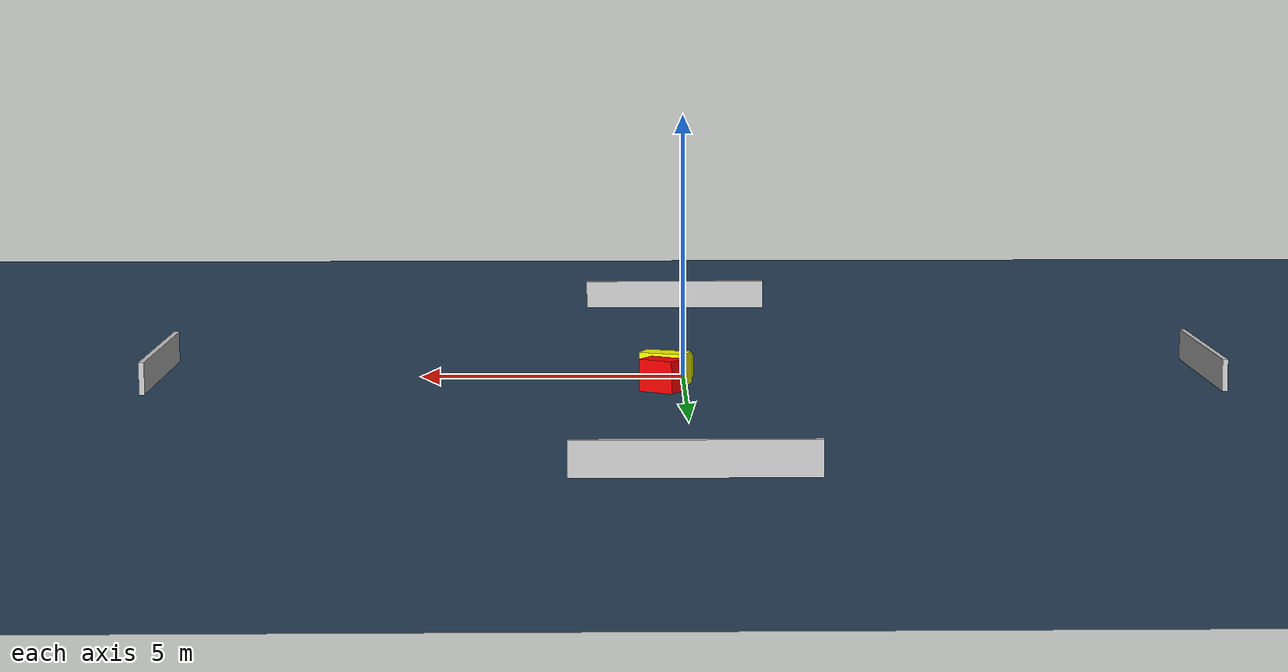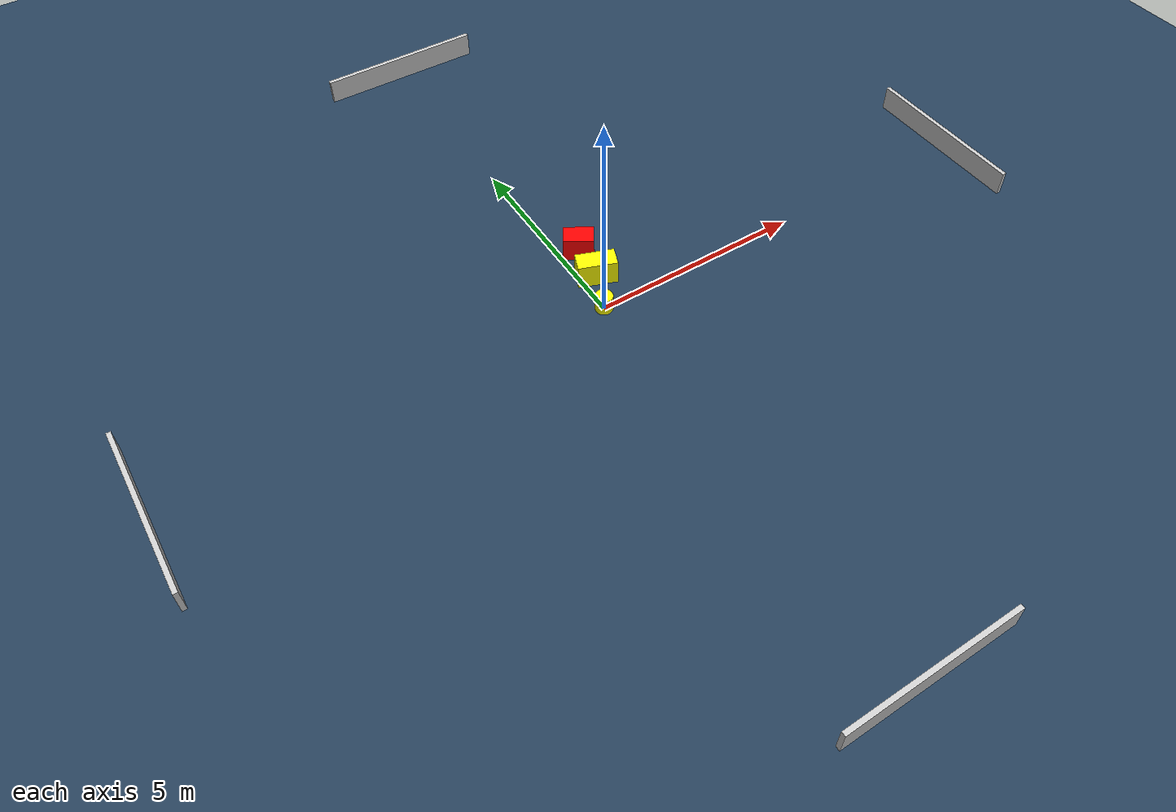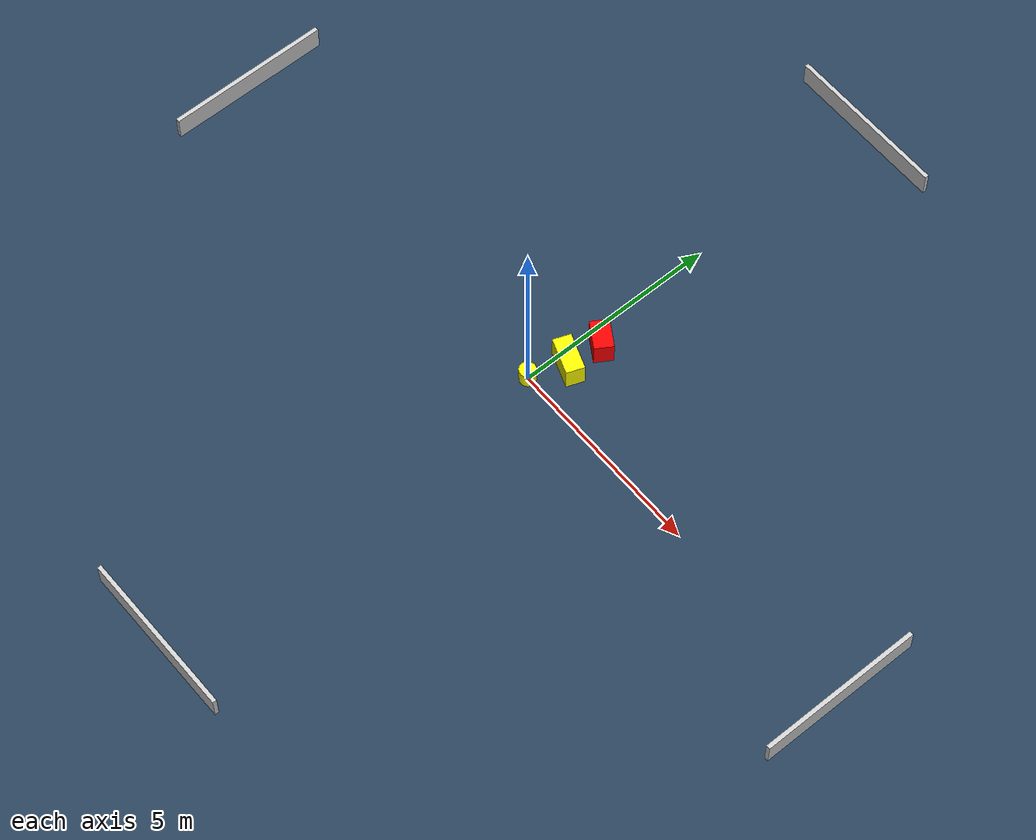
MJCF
<?xml version="1.0" ?>
<mujoco model="generated_environment">
  <option timestep="0.01" integrator="RK4" cone="elliptic"/>
  <default>
    <geom density="1"/>
  </default>
  <asset>
    <texture builtin="gradient" height="3072" name="skybox" rgb1="0.3 0.5 0.7" rgb2="0 0 0" type="skybox" width="512"/>
    <texture builtin="checker" height="300" name="groundplane" rgb1="0.2 0.3 0.4" rgb2="0.1 0.2 0.3" type="2d" width="300"/>
    <material name="groundplane" reflectance="0.2" texrepeat="5 5" texture="groundplane"/>
  </asset>
  <worldbody>
    <light dir="0 0 -1" directional="true" pos="0 0 1.5"/>
    <geom condim="3" friction="0.5 0.005 0.001" material="groundplane" name="floor" pos="0 0 0" size="0 0 0.05" type="plane"/>
    <body name="walls">
      <geom name="wall_1" condim="4" pos="-10.0 0.0 0.3" rgba="0.800000011920929 0.800000011920929 0.800000011920929 1.0" size="0.05 2.0 0.3" type="box"/>
      <geom name="wall_2" condim="4" pos="10.0 0.0 0.3" rgba="0.800000011920929 0.800000011920929 0.800000011920929 1.0" size="0.05 2.0 0.3" type="box"/>
      <geom name="wall_3" condim="4" pos="0.0 -10.0 0.3" rgba="0.800000011920929 0.800000011920929 0.800000011920929 1.0" size="2.0 0.05 0.3" type="box"/>
      <geom name="wall_4" condim="4" pos="0.0 10.0 0.3" rgba="0.800000011920929 0.800000011920929 0.800000011920929 1.0" size="2.0 0.05 0.3" type="box"/>
    </body>
    <body name="robot">
      <joint name="joint_x" type="slide" pos="0 0 0" axis="1 0 0"/>
      <joint name="joint_y" type="slide" pos="0 0 0" axis="0 1 0"/>
      <geom name="robot" type="cylinder" pos="0.0 0.0 0.2" size="0.2 0.2 0.0" mass="5.0" friction="1.0 0.005 0.0001" condim="4" rgba="1.0 1.0 0.0 1.0"/>
    </body>
    <body name="obstacle_1_movable">
      <geom name="obstacle_1_movable" condim="4" pos="0.35144016841846953 0.8654816875200788 0.3" euler="0 0 339.5051313450774" friction="0.0 0.005 0.001" rgba="1.0 1.0 0.0 1.0" size="0.4493034100688784 0.22219389890615324 0.3" type="box" mass="0.1"/>
      <joint type="free"/>
    </body>
    <body name="obstacle_2_static">
      <geom name="obstacle_2_static" condim="4" pos="0.4365020603296981 1.7367509271465211 0.3" euler="0 0 238.04853061597254" friction="0.0 0.005 0.001" rgba="1.0 0.0 0.0 1.0" size="0.22957228740659888 0.3511098582551108 0.3" type="box"/>
    </body>
  </worldbody>
  <actuator>
    <motor name="actuator_x" joint="joint_x" gear="1" ctrlrange="-1 1"/>
    <motor name="actuator_y" joint="joint_y" gear="1" ctrlrange="-1 1"/>
  </actuator>
</mujoco>
